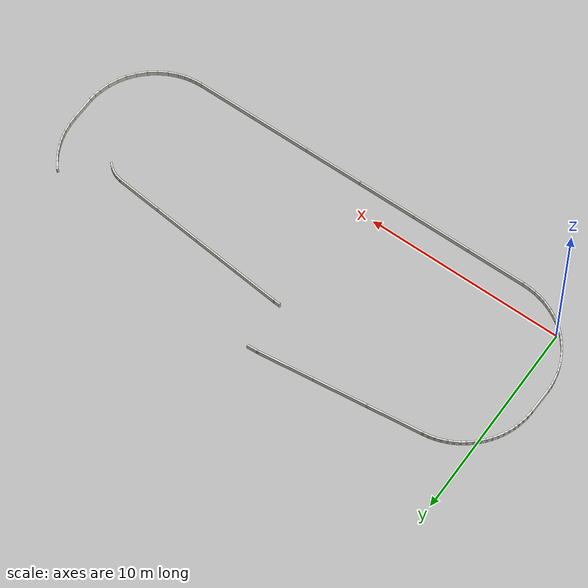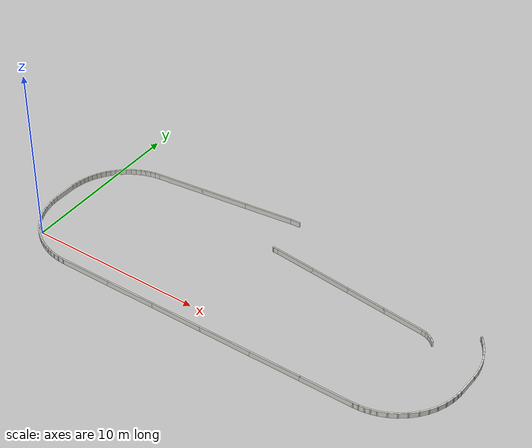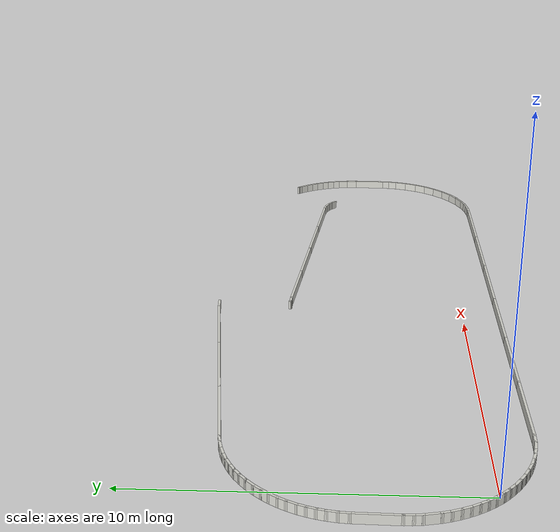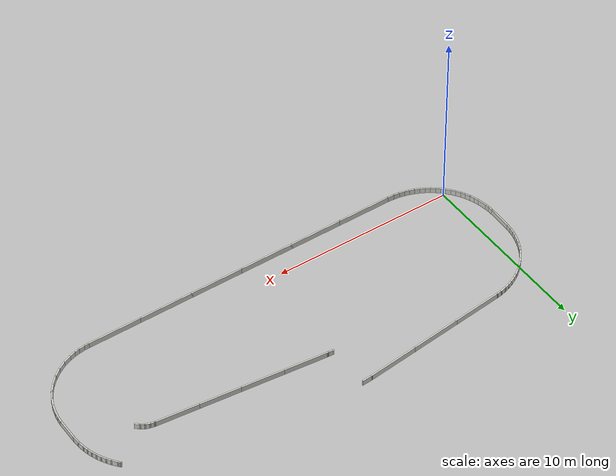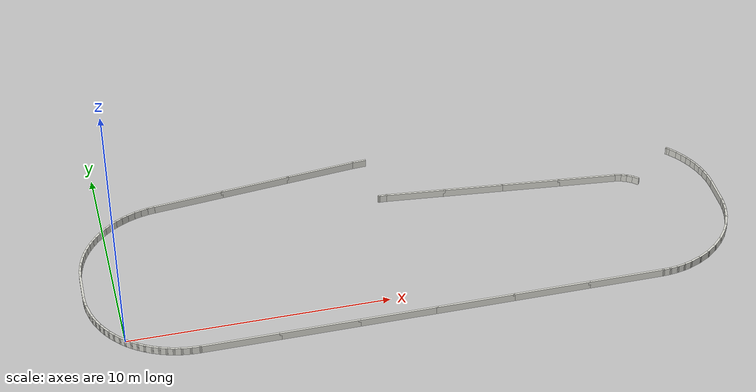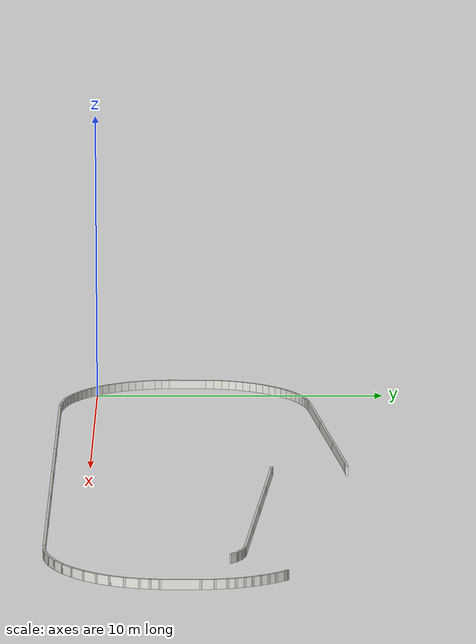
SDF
<sdf version="1.9">
 <world name="default">
  <model name="track_wall">
   <static>true</static>
   <link name="wall_link">
    <collision name="left0_0_0_collision">
     <pose>21.312929 4.647950 0.150000 0.000000 0.000000 2.402137</pose>
     <geometry><box><size>0.319361 0.080000 0.300000</size></box></geometry>
    </collision>
    <visual name="left0_0_0_visual">
     <pose>21.312929 4.647950 0.150000 0.000000 0.000000 2.402137</pose>
     <geometry><box><size>0.319361 0.080000 0.300000</size></box></geometry>
     <material><ambient>0.85 0.85 0.82 1</ambient><diffuse>0.85 0.85 0.82 1</diffuse></material>
    </visual>
    <collision name="left0_1_0_collision">
     <pose>21.123311 4.792501 0.150000 0.000000 0.000000 2.578366</pose>
     <geometry><box><size>0.319361 0.080000 0.300000</size></box></geometry>
    </collision>
    <visual name="left0_1_0_visual">
     <pose>21.123311 4.792501 0.150000 0.000000 0.000000 2.578366</pose>
     <geometry><box><size>0.319361 0.080000 0.300000</size></box></geometry>
     <material><ambient>0.85 0.85 0.82 1</ambient><diffuse>0.85 0.85 0.82 1</diffuse></material>
    </visual>
    <collision name="left0_2_0_collision">
     <pose>20.916260 4.900016 0.150000 0.000000 0.000000 2.750763</pose>
     <geometry><box><size>0.308979 0.080000 0.300000</size></box></geometry>
    </collision>
    <visual name="left0_2_0_visual">
     <pose>20.916260 4.900016 0.150000 0.000000 0.000000 2.750763</pose>
     <geometry><box><size>0.308979 0.080000 0.300000</size></box></geometry>
     <material><ambient>0.85 0.85 0.82 1</ambient><diffuse>0.85 0.85 0.82 1</diffuse></material>
    </visual>
    <collision name="left0_3_0_collision">
     <pose>20.693567 4.969566 0.150000 0.000000 0.000000 2.923161</pose>
     <geometry><box><size>0.319361 0.080000 0.300000</size></box></geometry>
    </collision>
    <visual name="left0_3_0_visual">
     <pose>20.693567 4.969566 0.150000 0.000000 0.000000 2.923161</pose>
     <geometry><box><size>0.319361 0.080000 0.300000</size></box></geometry>
     <material><ambient>0.85 0.85 0.82 1</ambient><diffuse>0.85 0.85 0.82 1</diffuse></material>
    </visual>
    <collision name="left0_4_0_collision">
     <pose>19.416419 5.111612 0.150000 0.000000 0.000000 3.041855</pose>
     <geometry><box><size>2.412213 0.080000 0.300000</size></box></geometry>
    </collision>
    <visual name="left0_4_0_visual">
     <pose>19.416419 5.111612 0.150000 0.000000 0.000000 3.041855</pose>
     <geometry><box><size>2.412213 0.080000 0.300000</size></box></geometry>
     <material><ambient>0.85 0.85 0.82 1</ambient><diffuse>0.85 0.85 0.82 1</diffuse></material>
    </visual>
    <collision name="left0_4_1_collision">
     <pose>17.095796 5.343835 0.150000 0.000000 0.000000 3.041855</pose>
     <geometry><box><size>2.412213 0.080000 0.300000</size></box></geometry>
    </collision>
    <visual name="left0_4_1_visual">
     <pose>17.095796 5.343835 0.150000 0.000000 0.000000 3.041855</pose>
     <geometry><box><size>2.412213 0.080000 0.300000</size></box></geometry>
     <material><ambient>0.85 0.85 0.82 1</ambient><diffuse>0.85 0.85 0.82 1</diffuse></material>
    </visual>
    <collision name="left0_4_2_collision">
     <pose>14.775173 5.576058 0.150000 0.000000 0.000000 3.041855</pose>
     <geometry><box><size>2.412213 0.080000 0.300000</size></box></geometry>
    </collision>
    <visual name="left0_4_2_visual">
     <pose>14.775173 5.576058 0.150000 0.000000 0.000000 3.041855</pose>
     <geometry><box><size>2.412213 0.080000 0.300000</size></box></geometry>
     <material><ambient>0.85 0.85 0.82 1</ambient><diffuse>0.85 0.85 0.82 1</diffuse></material>
    </visual>
    <collision name="left0_4_3_collision">
     <pose>12.454550 5.808281 0.150000 0.000000 0.000000 3.041855</pose>
     <geometry><box><size>2.412213 0.080000 0.300000</size></box></geometry>
    </collision>
    <visual name="left0_4_3_visual">
     <pose>12.454550 5.808281 0.150000 0.000000 0.000000 3.041855</pose>
     <geometry><box><size>2.412213 0.080000 0.300000</size></box></geometry>
     <material><ambient>0.85 0.85 0.82 1</ambient><diffuse>0.85 0.85 0.82 1</diffuse></material>
    </visual>
    <collision name="left0_5_0_collision">
     <pose>11.149956 5.931303 0.150000 0.000000 0.000000 3.093734</pose>
     <geometry><box><size>0.368896 0.080000 0.300000</size></box></geometry>
    </collision>
    <visual name="left0_5_0_visual">
     <pose>11.149956 5.931303 0.150000 0.000000 0.000000 3.093734</pose>
     <geometry><box><size>0.368896 0.080000 0.300000</size></box></geometry>
     <material><ambient>0.85 0.85 0.82 1</ambient><diffuse>0.85 0.85 0.82 1</diffuse></material>
    </visual>
    <collision name="left0_6_0_collision">
     <pose>10.998780 5.943259 0.150000 0.000000 0.000000 2.509762</pose>
     <geometry><box><size>0.097084 0.080000 0.300000</size></box></geometry>
    </collision>
    <visual name="left0_6_0_visual">
     <pose>10.998780 5.943259 0.150000 0.000000 0.000000 2.509762</pose>
     <geometry><box><size>0.097084 0.080000 0.300000</size></box></geometry>
     <material><ambient>0.85 0.85 0.82 1</ambient><diffuse>0.85 0.85 0.82 1</diffuse></material>
    </visual>
    <collision name="right1_0_0_collision">
     <pose>10.710147 8.400713 0.150000 0.000000 0.000000 -3.075481</pose>
     <geometry><box><size>0.597904 0.080000 0.300000</size></box></geometry>
    </collision>
    <visual name="right1_0_0_visual">
     <pose>10.710147 8.400713 0.150000 0.000000 0.000000 -3.075481</pose>
     <geometry><box><size>0.597904 0.080000 0.300000</size></box></geometry>
     <material><ambient>0.85 0.85 0.82 1</ambient><diffuse>0.85 0.85 0.82 1</diffuse></material>
    </visual>
    <collision name="right1_1_0_collision">
     <pose>9.074846 8.220286 0.150000 0.000000 0.000000 -3.023531</pose>
     <geometry><box><size>2.853135 0.080000 0.300000</size></box></geometry>
    </collision>
    <visual name="right1_1_0_visual">
     <pose>9.074846 8.220286 0.150000 0.000000 0.000000 -3.023531</pose>
     <geometry><box><size>2.853135 0.080000 0.300000</size></box></geometry>
     <material><ambient>0.85 0.85 0.82 1</ambient><diffuse>0.85 0.85 0.82 1</diffuse></material>
    </visual>
    <collision name="right1_1_1_collision">
     <pose>6.321015 7.893644 0.150000 0.000000 0.000000 -3.023531</pose>
     <geometry><box><size>2.853135 0.080000 0.300000</size></box></geometry>
    </collision>
    <visual name="right1_1_1_visual">
     <pose>6.321015 7.893644 0.150000 0.000000 0.000000 -3.023531</pose>
     <geometry><box><size>2.853135 0.080000 0.300000</size></box></geometry>
     <material><ambient>0.85 0.85 0.82 1</ambient><diffuse>0.85 0.85 0.82 1</diffuse></material>
    </visual>
    <collision name="right1_1_2_collision">
     <pose>3.567185 7.567003 0.150000 0.000000 0.000000 -3.023531</pose>
     <geometry><box><size>2.853135 0.080000 0.300000</size></box></geometry>
    </collision>
    <visual name="right1_1_2_visual">
     <pose>3.567185 7.567003 0.150000 0.000000 0.000000 -3.023531</pose>
     <geometry><box><size>2.853135 0.080000 0.300000</size></box></geometry>
     <material><ambient>0.85 0.85 0.82 1</ambient><diffuse>0.85 0.85 0.82 1</diffuse></material>
    </visual>
    <collision name="right1_2_0_collision">
     <pose>2.049290 7.381830 0.150000 0.000000 0.000000 -2.987811</pose>
     <geometry><box><size>0.365327 0.080000 0.300000</size></box></geometry>
    </collision>
    <visual name="right1_2_0_visual">
     <pose>2.049290 7.381830 0.150000 0.000000 0.000000 -2.987811</pose>
     <geometry><box><size>0.365327 0.080000 0.300000</size></box></geometry>
     <material><ambient>0.85 0.85 0.82 1</ambient><diffuse>0.85 0.85 0.82 1</diffuse></material>
    </visual>
    <collision name="right1_3_0_collision">
     <pose>1.768398 7.327218 0.150000 0.000000 0.000000 -2.911595</pose>
     <geometry><box><size>0.367392 0.080000 0.300000</size></box></geometry>
    </collision>
    <visual name="right1_3_0_visual">
     <pose>1.768398 7.327218 0.150000 0.000000 0.000000 -2.911595</pose>
     <geometry><box><size>0.367392 0.080000 0.300000</size></box></geometry>
     <material><ambient>0.85 0.85 0.82 1</ambient><diffuse>0.85 0.85 0.82 1</diffuse></material>
    </visual>
    <collision name="right1_4_0_collision">
     <pose>1.491557 7.251117 0.150000 0.000000 0.000000 -2.835041</pose>
     <geometry><box><size>0.367249 0.080000 0.300000</size></box></geometry>
    </collision>
    <visual name="right1_4_0_visual">
     <pose>1.491557 7.251117 0.150000 0.000000 0.000000 -2.835041</pose>
     <geometry><box><size>0.367249 0.080000 0.300000</size></box></geometry>
     <material><ambient>0.85 0.85 0.82 1</ambient><diffuse>0.85 0.85 0.82 1</diffuse></material>
    </visual>
    <collision name="right1_5_0_collision">
     <pose>1.221482 7.154114 0.150000 0.000000 0.000000 -2.758486</pose>
     <geometry><box><size>0.367106 0.080000 0.300000</size></box></geometry>
    </collision>
    <visual name="right1_5_0_visual">
     <pose>1.221482 7.154114 0.150000 0.000000 0.000000 -2.758486</pose>
     <geometry><box><size>0.367106 0.080000 0.300000</size></box></geometry>
     <material><ambient>0.85 0.85 0.82 1</ambient><diffuse>0.85 0.85 0.82 1</diffuse></material>
    </visual>
    <collision name="right1_6_0_collision">
     <pose>0.959747 7.036799 0.150000 0.000000 0.000000 -2.681931</pose>
     <geometry><box><size>0.366963 0.080000 0.300000</size></box></geometry>
    </collision>
    <visual name="right1_6_0_visual">
     <pose>0.959747 7.036799 0.150000 0.000000 0.000000 -2.681931</pose>
     <geometry><box><size>0.366963 0.080000 0.300000</size></box></geometry>
     <material><ambient>0.85 0.85 0.82 1</ambient><diffuse>0.85 0.85 0.82 1</diffuse></material>
    </visual>
    <collision name="right1_7_0_collision">
     <pose>0.707877 6.899878 0.150000 0.000000 0.000000 -2.605376</pose>
     <geometry><box><size>0.366819 0.080000 0.300000</size></box></geometry>
    </collision>
    <visual name="right1_7_0_visual">
     <pose>0.707877 6.899878 0.150000 0.000000 0.000000 -2.605376</pose>
     <geometry><box><size>0.366819 0.080000 0.300000</size></box></geometry>
     <material><ambient>0.85 0.85 0.82 1</ambient><diffuse>0.85 0.85 0.82 1</diffuse></material>
    </visual>
    <collision name="right1_8_0_collision">
     <pose>0.467337 6.744173 0.150000 0.000000 0.000000 -2.528821</pose>
     <geometry><box><size>0.366676 0.080000 0.300000</size></box></geometry>
    </collision>
    <visual name="right1_8_0_visual">
     <pose>0.467337 6.744173 0.150000 0.000000 0.000000 -2.528821</pose>
     <geometry><box><size>0.366676 0.080000 0.300000</size></box></geometry>
     <material><ambient>0.85 0.85 0.82 1</ambient><diffuse>0.85 0.85 0.82 1</diffuse></material>
    </visual>
    <collision name="right1_9_0_collision">
     <pose>0.239523 6.570614 0.150000 0.000000 0.000000 -2.452266</pose>
     <geometry><box><size>0.366533 0.080000 0.300000</size></box></geometry>
    </collision>
    <visual name="right1_9_0_visual">
     <pose>0.239523 6.570614 0.150000 0.000000 0.000000 -2.452266</pose>
     <geometry><box><size>0.366533 0.080000 0.300000</size></box></geometry>
     <material><ambient>0.85 0.85 0.82 1</ambient><diffuse>0.85 0.85 0.82 1</diffuse></material>
    </visual>
    <collision name="right1_10_0_collision">
     <pose>0.015863 6.369884 0.150000 0.000000 0.000000 -2.371885</pose>
     <geometry><box><size>0.395004 0.080000 0.300000</size></box></geometry>
    </collision>
    <visual name="right1_10_0_visual">
     <pose>0.015863 6.369884 0.150000 0.000000 0.000000 -2.371885</pose>
     <geometry><box><size>0.395004 0.080000 0.300000</size></box></geometry>
     <material><ambient>0.85 0.85 0.82 1</ambient><diffuse>0.85 0.85 0.82 1</diffuse></material>
    </visual>
    <collision name="right1_11_0_collision">
     <pose>-0.192926 6.153767 0.150000 0.000000 0.000000 -2.302718</pose>
     <geometry><box><size>0.366352 0.080000 0.300000</size></box></geometry>
    </collision>
    <visual name="right1_11_0_visual">
     <pose>-0.192926 6.153767 0.150000 0.000000 0.000000 -2.302718</pose>
     <geometry><box><size>0.366352 0.080000 0.300000</size></box></geometry>
     <material><ambient>0.85 0.85 0.82 1</ambient><diffuse>0.85 0.85 0.82 1</diffuse></material>
    </visual>
    <collision name="right1_12_0_collision">
     <pose>-0.368528 5.946047 0.150000 0.000000 0.000000 -2.239164</pose>
     <geometry><box><size>0.337920 0.080000 0.300000</size></box></geometry>
    </collision>
    <visual name="right1_12_0_visual">
     <pose>-0.368528 5.946047 0.150000 0.000000 0.000000 -2.239164</pose>
     <geometry><box><size>0.337920 0.080000 0.300000</size></box></geometry>
     <material><ambient>0.85 0.85 0.82 1</ambient><diffuse>0.85 0.85 0.82 1</diffuse></material>
    </visual>
    <collision name="right1_13_0_collision">
     <pose>-0.528911 5.726107 0.150000 0.000000 0.000000 -2.166425</pose>
     <geometry><box><size>0.366853 0.080000 0.300000</size></box></geometry>
    </collision>
    <visual name="right1_13_0_visual">
     <pose>-0.528911 5.726107 0.150000 0.000000 0.000000 -2.166425</pose>
     <geometry><box><size>0.366853 0.080000 0.300000</size></box></geometry>
     <material><ambient>0.85 0.85 0.82 1</ambient><diffuse>0.85 0.85 0.82 1</diffuse></material>
    </visual>
    <collision name="right1_14_0_collision">
     <pose>-0.673909 5.495426 0.150000 0.000000 0.000000 -2.093688</pose>
     <geometry><box><size>0.338440 0.080000 0.300000</size></box></geometry>
    </collision>
    <visual name="right1_14_0_visual">
     <pose>-0.673909 5.495426 0.150000 0.000000 0.000000 -2.093688</pose>
     <geometry><box><size>0.338440 0.080000 0.300000</size></box></geometry>
     <material><ambient>0.85 0.85 0.82 1</ambient><diffuse>0.85 0.85 0.82 1</diffuse></material>
    </visual>
    <collision name="right1_15_0_collision">
     <pose>-0.800971 5.254074 0.150000 0.000000 0.000000 -2.020949</pose>
     <geometry><box><size>0.367431 0.080000 0.300000</size></box></geometry>
    </collision>
    <visual name="right1_15_0_visual">
     <pose>-0.800971 5.254074 0.150000 0.000000 0.000000 -2.020949</pose>
     <geometry><box><size>0.367431 0.080000 0.300000</size></box></geometry>
     <material><ambient>0.85 0.85 0.82 1</ambient><diffuse>0.85 0.85 0.82 1</diffuse></material>
    </visual>
    <collision name="right1_16_0_collision">
     <pose>-0.911218 5.004309 0.150000 0.000000 0.000000 -1.948213</pose>
     <geometry><box><size>0.338960 0.080000 0.300000</size></box></geometry>
    </collision>
    <visual name="right1_16_0_visual">
     <pose>-0.911218 5.004309 0.150000 0.000000 0.000000 -1.948213</pose>
     <geometry><box><size>0.338960 0.080000 0.300000</size></box></geometry>
     <material><ambient>0.85 0.85 0.82 1</ambient><diffuse>0.85 0.85 0.82 1</diffuse></material>
    </visual>
    <collision name="right1_17_0_collision">
     <pose>-0.998286 4.760458 0.150000 0.000000 0.000000 -1.879303</pose>
     <geometry><box><size>0.339206 0.080000 0.300000</size></box></geometry>
    </collision>
    <visual name="right1_17_0_visual">
     <pose>-0.998286 4.760458 0.150000 0.000000 0.000000 -1.879303</pose>
     <geometry><box><size>0.339206 0.080000 0.300000</size></box></geometry>
     <material><ambient>0.85 0.85 0.82 1</ambient><diffuse>0.85 0.85 0.82 1</diffuse></material>
    </visual>
    <collision name="right1_18_0_collision">
     <pose>-1.068423 4.510953 0.150000 0.000000 0.000000 -1.810394</pose>
     <geometry><box><size>0.339452 0.080000 0.300000</size></box></geometry>
    </collision>
    <visual name="right1_18_0_visual">
     <pose>-1.068423 4.510953 0.150000 0.000000 0.000000 -1.810394</pose>
     <geometry><box><size>0.339452 0.080000 0.300000</size></box></geometry>
     <material><ambient>0.85 0.85 0.82 1</ambient><diffuse>0.85 0.85 0.82 1</diffuse></material>
    </visual>
    <collision name="right1_19_0_collision">
     <pose>-1.123171 4.242659 0.150000 0.000000 0.000000 -1.737655</pose>
     <geometry><box><size>0.368555 0.080000 0.300000</size></box></geometry>
    </collision>
    <visual name="right1_19_0_visual">
     <pose>-1.123171 4.242659 0.150000 0.000000 0.000000 -1.737655</pose>
     <geometry><box><size>0.368555 0.080000 0.300000</size></box></geometry>
     <material><ambient>0.85 0.85 0.82 1</ambient><diffuse>0.85 0.85 0.82 1</diffuse></material>
    </visual>
    <collision name="right1_20_0_collision">
     <pose>-1.160157 3.956544 0.150000 0.000000 0.000000 -1.661089</pose>
     <geometry><box><size>0.368859 0.080000 0.300000</size></box></geometry>
    </collision>
    <visual name="right1_20_0_visual">
     <pose>-1.160157 3.956544 0.150000 0.000000 0.000000 -1.661089</pose>
     <geometry><box><size>0.368859 0.080000 0.300000</size></box></geometry>
     <material><ambient>0.85 0.85 0.82 1</ambient><diffuse>0.85 0.85 0.82 1</diffuse></material>
    </visual>
    <collision name="right1_21_0_collision">
     <pose>-1.186308 3.162674 0.150000 0.000000 0.000000 -1.590991</pose>
     <geometry><box><size>1.380322 0.080000 0.300000</size></box></geometry>
    </collision>
    <visual name="right1_21_0_visual">
     <pose>-1.186308 3.162674 0.150000 0.000000 0.000000 -1.590991</pose>
     <geometry><box><size>1.380322 0.080000 0.300000</size></box></geometry>
     <material><ambient>0.85 0.85 0.82 1</ambient><diffuse>0.85 0.85 0.82 1</diffuse></material>
    </visual>
    <collision name="right1_22_0_collision">
     <pose>-1.193694 2.381681 0.150000 0.000000 0.000000 -1.526968</pose>
     <geometry><box><size>0.342181 0.080000 0.300000</size></box></geometry>
    </collision>
    <visual name="right1_22_0_visual">
     <pose>-1.193694 2.381681 0.150000 0.000000 0.000000 -1.526968</pose>
     <geometry><box><size>0.342181 0.080000 0.300000</size></box></geometry>
     <material><ambient>0.85 0.85 0.82 1</ambient><diffuse>0.85 0.85 0.82 1</diffuse></material>
    </visual>
    <collision name="right1_23_0_collision">
     <pose>-1.175266 2.134775 0.150000 0.000000 0.000000 -1.461826</pose>
     <geometry><box><size>0.313267 0.080000 0.300000</size></box></geometry>
    </collision>
    <visual name="right1_23_0_visual">
     <pose>-1.175266 2.134775 0.150000 0.000000 0.000000 -1.461826</pose>
     <geometry><box><size>0.313267 0.080000 0.300000</size></box></geometry>
     <material><ambient>0.85 0.85 0.82 1</ambient><diffuse>0.85 0.85 0.82 1</diffuse></material>
    </visual>
    <collision name="right1_24_0_collision">
     <pose>-1.115985 1.790082 0.150000 0.000000 0.000000 -1.369848</pose>
     <geometry><box><size>0.546899 0.080000 0.300000</size></box></geometry>
    </collision>
    <visual name="right1_24_0_visual">
     <pose>-1.115985 1.790082 0.150000 0.000000 0.000000 -1.369848</pose>
     <geometry><box><size>0.546899 0.080000 0.300000</size></box></geometry>
     <material><ambient>0.85 0.85 0.82 1</ambient><diffuse>0.85 0.85 0.82 1</diffuse></material>
    </visual>
    <collision name="right1_25_0_collision">
     <pose>-1.030926 1.435536 0.150000 0.000000 0.000000 -1.274061</pose>
     <geometry><box><size>0.343086 0.080000 0.300000</size></box></geometry>
    </collision>
    <visual name="right1_25_0_visual">
     <pose>-1.030926 1.435536 0.150000 0.000000 0.000000 -1.274061</pose>
     <geometry><box><size>0.343086 0.080000 0.300000</size></box></geometry>
     <material><ambient>0.85 0.85 0.82 1</ambient><diffuse>0.85 0.85 0.82 1</diffuse></material>
    </visual>
    <collision name="right1_26_0_collision">
     <pose>-0.945377 1.186783 0.150000 0.000000 0.000000 -1.205087</pose>
     <geometry><box><size>0.343332 0.080000 0.300000</size></box></geometry>
    </collision>
    <visual name="right1_26_0_visual">
     <pose>-0.945377 1.186783 0.150000 0.000000 0.000000 -1.205087</pose>
     <geometry><box><size>0.343332 0.080000 0.300000</size></box></geometry>
     <material><ambient>0.85 0.85 0.82 1</ambient><diffuse>0.85 0.85 0.82 1</diffuse></material>
    </visual>
    <collision name="right1_27_0_collision">
     <pose>-0.842792 0.944291 0.150000 0.000000 0.000000 -1.136112</pose>
     <geometry><box><size>0.343579 0.080000 0.300000</size></box></geometry>
    </collision>
    <visual name="right1_27_0_visual">
     <pose>-0.842792 0.944291 0.150000 0.000000 0.000000 -1.136112</pose>
     <geometry><box><size>0.343579 0.080000 0.300000</size></box></geometry>
     <material><ambient>0.85 0.85 0.82 1</ambient><diffuse>0.85 0.85 0.82 1</diffuse></material>
    </visual>
    <collision name="right1_28_0_collision">
     <pose>-0.723627 0.709225 0.150000 0.000000 0.000000 -1.067138</pose>
     <geometry><box><size>0.343826 0.080000 0.300000</size></box></geometry>
    </collision>
    <visual name="right1_28_0_visual">
     <pose>-0.723627 0.709225 0.150000 0.000000 0.000000 -1.067138</pose>
     <geometry><box><size>0.343826 0.080000 0.300000</size></box></geometry>
     <material><ambient>0.85 0.85 0.82 1</ambient><diffuse>0.85 0.85 0.82 1</diffuse></material>
    </visual>
    <collision name="right1_29_0_collision">
     <pose>-0.588418 0.482720 0.150000 0.000000 0.000000 -0.998163</pose>
     <geometry><box><size>0.344072 0.080000 0.300000</size></box></geometry>
    </collision>
    <visual name="right1_29_0_visual">
     <pose>-0.588418 0.482720 0.150000 0.000000 0.000000 -0.998163</pose>
     <geometry><box><size>0.344072 0.080000 0.300000</size></box></geometry>
     <material><ambient>0.85 0.85 0.82 1</ambient><diffuse>0.85 0.85 0.82 1</diffuse></material>
    </visual>
    <collision name="right1_30_0_collision">
     <pose>-0.437779 0.265869 0.150000 0.000000 0.000000 -0.929189</pose>
     <geometry><box><size>0.344319 0.080000 0.300000</size></box></geometry>
    </collision>
    <visual name="right1_30_0_visual">
     <pose>-0.437779 0.265869 0.150000 0.000000 0.000000 -0.929189</pose>
     <geometry><box><size>0.344319 0.080000 0.300000</size></box></geometry>
     <material><ambient>0.85 0.85 0.82 1</ambient><diffuse>0.85 0.85 0.82 1</diffuse></material>
    </visual>
    <collision name="right1_31_0_collision">
     <pose>-0.262385 0.048950 0.150000 0.000000 0.000000 -0.856381</pose>
     <geometry><box><size>0.373963 0.080000 0.300000</size></box></geometry>
    </collision>
    <visual name="right1_31_0_visual">
     <pose>-0.262385 0.048950 0.150000 0.000000 0.000000 -0.856381</pose>
     <geometry><box><size>0.373963 0.080000 0.300000</size></box></geometry>
     <material><ambient>0.85 0.85 0.82 1</ambient><diffuse>0.85 0.85 0.82 1</diffuse></material>
    </visual>
    <collision name="right1_32_0_collision">
     <pose>-0.082115 -0.144500 0.150000 0.000000 0.000000 -0.776003</pose>
     <geometry><box><size>0.315307 0.080000 0.300000</size></box></geometry>
    </collision>
    <visual name="right1_32_0_visual">
     <pose>-0.082115 -0.144500 0.150000 0.000000 0.000000 -0.776003</pose>
     <geometry><box><size>0.315307 0.080000 0.300000</size></box></geometry>
     <material><ambient>0.85 0.85 0.82 1</ambient><diffuse>0.85 0.85 0.82 1</diffuse></material>
    </visual>
    <collision name="right1_33_0_collision">
     <pose>0.102598 -0.312744 0.150000 0.000000 0.000000 -0.705681</pose>
     <geometry><box><size>0.344699 0.080000 0.300000</size></box></geometry>
    </collision>
    <visual name="right1_33_0_visual">
     <pose>0.102598 -0.312744 0.150000 0.000000 0.000000 -0.705681</pose>
     <geometry><box><size>0.344699 0.080000 0.300000</size></box></geometry>
     <material><ambient>0.85 0.85 0.82 1</ambient><diffuse>0.85 0.85 0.82 1</diffuse></material>
    </visual>
    <collision name="right1_34_0_collision">
     <pose>0.309732 -0.477252 0.150000 0.000000 0.000000 -0.636718</pose>
     <geometry><box><size>0.344643 0.080000 0.300000</size></box></geometry>
    </collision>
    <visual name="right1_34_0_visual">
     <pose>0.309732 -0.477252 0.150000 0.000000 0.000000 -0.636718</pose>
     <geometry><box><size>0.344643 0.080000 0.300000</size></box></geometry>
     <material><ambient>0.85 0.85 0.82 1</ambient><diffuse>0.85 0.85 0.82 1</diffuse></material>
    </visual>
    <collision name="right1_35_0_collision">
     <pose>0.527662 -0.627065 0.150000 0.000000 0.000000 -0.567756</pose>
     <geometry><box><size>0.344586 0.080000 0.300000</size></box></geometry>
    </collision>
    <visual name="right1_35_0_visual">
     <pose>0.527662 -0.627065 0.150000 0.000000 0.000000 -0.567756</pose>
     <geometry><box><size>0.344586 0.080000 0.300000</size></box></geometry>
     <material><ambient>0.85 0.85 0.82 1</ambient><diffuse>0.85 0.85 0.82 1</diffuse></material>
    </visual>
    <collision name="right1_36_0_collision">
     <pose>0.768516 -0.768006 0.150000 0.000000 0.000000 -0.494962</pose>
     <geometry><box><size>0.373905 0.080000 0.300000</size></box></geometry>
    </collision>
    <visual name="right1_36_0_visual">
     <pose>0.768516 -0.768006 0.150000 0.000000 0.000000 -0.494962</pose>
     <geometry><box><size>0.373905 0.080000 0.300000</size></box></geometry>
     <material><ambient>0.85 0.85 0.82 1</ambient><diffuse>0.85 0.85 0.82 1</diffuse></material>
    </visual>
    <collision name="right1_37_0_collision">
     <pose>1.018456 -0.891990 0.150000 0.000000 0.000000 -0.422168</pose>
     <geometry><box><size>0.344467 0.080000 0.300000</size></box></geometry>
    </collision>
    <visual name="right1_37_0_visual">
     <pose>1.018456 -0.891990 0.150000 0.000000 0.000000 -0.422168</pose>
     <geometry><box><size>0.344467 0.080000 0.300000</size></box></geometry>
     <material><ambient>0.85 0.85 0.82 1</ambient><diffuse>0.85 0.85 0.82 1</diffuse></material>
    </visual>
    <collision name="right1_38_0_collision">
     <pose>1.263124 -0.991902 0.150000 0.000000 0.000000 -0.353206</pose>
     <geometry><box><size>0.344411 0.080000 0.300000</size></box></geometry>
    </collision>
    <visual name="right1_38_0_visual">
     <pose>1.263124 -0.991902 0.150000 0.000000 0.000000 -0.353206</pose>
     <geometry><box><size>0.344411 0.080000 0.300000</size></box></geometry>
     <material><ambient>0.85 0.85 0.82 1</ambient><diffuse>0.85 0.85 0.82 1</diffuse></material>
    </visual>
    <collision name="right1_39_0_collision">
     <pose>1.514042 -1.074699 0.150000 0.000000 0.000000 -0.284243</pose>
     <geometry><box><size>0.344354 0.080000 0.300000</size></box></geometry>
    </collision>
    <visual name="right1_39_0_visual">
     <pose>1.514042 -1.074699 0.150000 0.000000 0.000000 -0.284243</pose>
     <geometry><box><size>0.344354 0.080000 0.300000</size></box></geometry>
     <material><ambient>0.85 0.85 0.82 1</ambient><diffuse>0.85 0.85 0.82 1</diffuse></material>
    </visual>
    <collision name="right1_40_0_collision">
     <pose>1.784468 -1.142581 0.150000 0.000000 0.000000 -0.211450</pose>
     <geometry><box><size>0.373647 0.080000 0.300000</size></box></geometry>
    </collision>
    <visual name="right1_40_0_visual">
     <pose>1.784468 -1.142581 0.150000 0.000000 0.000000 -0.211450</pose>
     <geometry><box><size>0.373647 0.080000 0.300000</size></box></geometry>
     <material><ambient>0.85 0.85 0.82 1</ambient><diffuse>0.85 0.85 0.82 1</diffuse></material>
    </visual>
    <collision name="right1_41_0_collision">
     <pose>2.088095 -1.194485 0.150000 0.000000 0.000000 -0.130994</pose>
     <geometry><box><size>0.402914 0.080000 0.300000</size></box></geometry>
    </collision>
    <visual name="right1_41_0_visual">
     <pose>2.088095 -1.194485 0.150000 0.000000 0.000000 -0.130994</pose>
     <geometry><box><size>0.402914 0.080000 0.300000</size></box></geometry>
     <material><ambient>0.85 0.85 0.82 1</ambient><diffuse>0.85 0.85 0.82 1</diffuse></material>
    </visual>
    <collision name="right1_42_0_collision">
     <pose>2.422908 -1.223121 0.150000 0.000000 0.000000 -0.043158</pose>
     <geometry><box><size>0.429803 0.080000 0.300000</size></box></geometry>
    </collision>
    <visual name="right1_42_0_visual">
     <pose>2.422908 -1.223121 0.150000 0.000000 0.000000 -0.043158</pose>
     <geometry><box><size>0.429803 0.080000 0.300000</size></box></geometry>
     <material><ambient>0.85 0.85 0.82 1</ambient><diffuse>0.85 0.85 0.82 1</diffuse></material>
    </visual>
    <collision name="right1_43_0_collision">
     <pose>4.083571 -1.223872 0.150000 0.000000 0.000000 0.004573</pose>
     <geometry><box><size>3.051878 0.080000 0.300000</size></box></geometry>
    </collision>
    <visual name="right1_43_0_visual">
     <pose>4.083571 -1.223872 0.150000 0.000000 0.000000 0.004573</pose>
     <geometry><box><size>3.051878 0.080000 0.300000</size></box></geometry>
     <material><ambient>0.85 0.85 0.82 1</ambient><diffuse>0.85 0.85 0.82 1</diffuse></material>
    </visual>
    <collision name="right1_43_1_collision">
     <pose>7.055417 -1.210283 0.150000 0.000000 0.000000 0.004573</pose>
     <geometry><box><size>3.051878 0.080000 0.300000</size></box></geometry>
    </collision>
    <visual name="right1_43_1_visual">
     <pose>7.055417 -1.210283 0.150000 0.000000 0.000000 0.004573</pose>
     <geometry><box><size>3.051878 0.080000 0.300000</size></box></geometry>
     <material><ambient>0.85 0.85 0.82 1</ambient><diffuse>0.85 0.85 0.82 1</diffuse></material>
    </visual>
    <collision name="right1_43_2_collision">
     <pose>10.027264 -1.196693 0.150000 0.000000 0.000000 0.004573</pose>
     <geometry><box><size>3.051878 0.080000 0.300000</size></box></geometry>
    </collision>
    <visual name="right1_43_2_visual">
     <pose>10.027264 -1.196693 0.150000 0.000000 0.000000 0.004573</pose>
     <geometry><box><size>3.051878 0.080000 0.300000</size></box></geometry>
     <material><ambient>0.85 0.85 0.82 1</ambient><diffuse>0.85 0.85 0.82 1</diffuse></material>
    </visual>
    <collision name="right1_43_3_collision">
     <pose>12.999111 -1.183104 0.150000 0.000000 0.000000 0.004573</pose>
     <geometry><box><size>3.051878 0.080000 0.300000</size></box></geometry>
    </collision>
    <visual name="right1_43_3_visual">
     <pose>12.999111 -1.183104 0.150000 0.000000 0.000000 0.004573</pose>
     <geometry><box><size>3.051878 0.080000 0.300000</size></box></geometry>
     <material><ambient>0.85 0.85 0.82 1</ambient><diffuse>0.85 0.85 0.82 1</diffuse></material>
    </visual>
    <collision name="right1_43_4_collision">
     <pose>15.970958 -1.169514 0.150000 0.000000 0.000000 0.004573</pose>
     <geometry><box><size>3.051878 0.080000 0.300000</size></box></geometry>
    </collision>
    <visual name="right1_43_4_visual">
     <pose>15.970958 -1.169514 0.150000 0.000000 0.000000 0.004573</pose>
     <geometry><box><size>3.051878 0.080000 0.300000</size></box></geometry>
     <material><ambient>0.85 0.85 0.82 1</ambient><diffuse>0.85 0.85 0.82 1</diffuse></material>
    </visual>
    <collision name="right1_43_5_collision">
     <pose>18.942805 -1.155925 0.150000 0.000000 0.000000 0.004573</pose>
     <geometry><box><size>3.051878 0.080000 0.300000</size></box></geometry>
    </collision>
    <visual name="right1_43_5_visual">
     <pose>18.942805 -1.155925 0.150000 0.000000 0.000000 0.004573</pose>
     <geometry><box><size>3.051878 0.080000 0.300000</size></box></geometry>
     <material><ambient>0.85 0.85 0.82 1</ambient><diffuse>0.85 0.85 0.82 1</diffuse></material>
    </visual>
    <collision name="right1_44_0_collision">
     <pose>20.572144 -1.142077 0.150000 0.000000 0.000000 0.049142</pose>
     <geometry><box><size>0.367179 0.080000 0.300000</size></box></geometry>
    </collision>
    <visual name="right1_44_0_visual">
     <pose>20.572144 -1.142077 0.150000 0.000000 0.000000 0.049142</pose>
     <geometry><box><size>0.367179 0.080000 0.300000</size></box></geometry>
     <material><ambient>0.85 0.85 0.82 1</ambient><diffuse>0.85 0.85 0.82 1</diffuse></material>
    </visual>
    <collision name="right1_45_0_collision">
     <pose>20.872136 -1.114617 0.150000 0.000000 0.000000 0.129598</pose>
     <geometry><box><size>0.395800 0.080000 0.300000</size></box></geometry>
    </collision>
    <visual name="right1_45_0_visual">
     <pose>20.872136 -1.114617 0.150000 0.000000 0.000000 0.129598</pose>
     <geometry><box><size>0.395800 0.080000 0.300000</size></box></geometry>
     <material><ambient>0.85 0.85 0.82 1</ambient><diffuse>0.85 0.85 0.82 1</diffuse></material>
    </visual>
    <collision name="right1_46_0_collision">
     <pose>21.169073 -1.064285 0.150000 0.000000 0.000000 0.210055</pose>
     <geometry><box><size>0.367032 0.080000 0.300000</size></box></geometry>
    </collision>
    <visual name="right1_46_0_visual">
     <pose>21.169073 -1.064285 0.150000 0.000000 0.000000 0.210055</pose>
     <geometry><box><size>0.367032 0.080000 0.300000</size></box></geometry>
     <material><ambient>0.85 0.85 0.82 1</ambient><diffuse>0.85 0.85 0.82 1</diffuse></material>
    </visual>
    <collision name="right1_47_0_collision">
     <pose>21.460642 -0.989154 0.150000 0.000000 0.000000 0.290511</pose>
     <geometry><box><size>0.395639 0.080000 0.300000</size></box></geometry>
    </collision>
    <visual name="right1_47_0_visual">
     <pose>21.460642 -0.989154 0.150000 0.000000 0.000000 0.290511</pose>
     <geometry><box><size>0.395639 0.080000 0.300000</size></box></geometry>
     <material><ambient>0.85 0.85 0.82 1</ambient><diffuse>0.85 0.85 0.82 1</diffuse></material>
    </visual>
    <collision name="right1_48_0_collision">
     <pose>21.836538 -0.849537 0.150000 0.000000 0.000000 0.397783</pose>
     <geometry><box><size>0.567439 0.080000 0.300000</size></box></geometry>
    </collision>
    <visual name="right1_48_0_visual">
     <pose>21.836538 -0.849537 0.150000 0.000000 0.000000 0.397783</pose>
     <geometry><box><size>0.567439 0.080000 0.300000</size></box></geometry>
     <material><ambient>0.85 0.85 0.82 1</ambient><diffuse>0.85 0.85 0.82 1</diffuse></material>
    </visual>
    <collision name="right1_49_0_collision">
     <pose>22.271665 -0.632380 0.150000 0.000000 0.000000 0.528045</pose>
     <geometry><box><size>0.567238 0.080000 0.300000</size></box></geometry>
    </collision>
    <visual name="right1_49_0_visual">
     <pose>22.271665 -0.632380 0.150000 0.000000 0.000000 0.528045</pose>
     <geometry><box><size>0.567238 0.080000 0.300000</size></box></geometry>
     <material><ambient>0.85 0.85 0.82 1</ambient><diffuse>0.85 0.85 0.82 1</diffuse></material>
    </visual>
    <collision name="right1_50_0_collision">
     <pose>22.674732 -0.360654 0.150000 0.000000 0.000000 0.658308</pose>
     <geometry><box><size>0.567036 0.080000 0.300000</size></box></geometry>
    </collision>
    <visual name="right1_50_0_visual">
     <pose>22.674732 -0.360654 0.150000 0.000000 0.000000 0.658308</pose>
     <geometry><box><size>0.567036 0.080000 0.300000</size></box></geometry>
     <material><ambient>0.85 0.85 0.82 1</ambient><diffuse>0.85 0.85 0.82 1</diffuse></material>
    </visual>
    <collision name="right1_51_0_collision">
     <pose>23.050069 -0.029694 0.150000 0.000000 0.000000 0.783407</pose>
     <geometry><box><size>0.595748 0.080000 0.300000</size></box></geometry>
    </collision>
    <visual name="right1_51_0_visual">
     <pose>23.050069 -0.029694 0.150000 0.000000 0.000000 0.783407</pose>
     <geometry><box><size>0.595748 0.080000 0.300000</size></box></geometry>
     <material><ambient>0.85 0.85 0.82 1</ambient><diffuse>0.85 0.85 0.82 1</diffuse></material>
    </visual>
    <collision name="right1_52_0_collision">
     <pose>23.382575 0.344772 0.150000 0.000000 0.000000 0.909469</pose>
     <geometry><box><size>0.567812 0.080000 0.300000</size></box></geometry>
    </collision>
    <visual name="right1_52_0_visual">
     <pose>23.382575 0.344772 0.150000 0.000000 0.000000 0.909469</pose>
     <geometry><box><size>0.567812 0.080000 0.300000</size></box></geometry>
     <material><ambient>0.85 0.85 0.82 1</ambient><diffuse>0.85 0.85 0.82 1</diffuse></material>
    </visual>
    <collision name="right1_53_0_collision">
     <pose>23.649602 0.735117 0.150000 0.000000 0.000000 1.035921</pose>
     <geometry><box><size>0.539960 0.080000 0.300000</size></box></geometry>
    </collision>
    <visual name="right1_53_0_visual">
     <pose>23.649602 0.735117 0.150000 0.000000 0.000000 1.035921</pose>
     <geometry><box><size>0.539960 0.080000 0.300000</size></box></geometry>
     <material><ambient>0.85 0.85 0.82 1</ambient><diffuse>0.85 0.85 0.82 1</diffuse></material>
    </visual>
    <collision name="right1_54_0_collision">
     <pose>23.864039 1.157606 0.150000 0.000000 0.000000 1.162378</pose>
     <geometry><box><size>0.569523 0.080000 0.300000</size></box></geometry>
    </collision>
    <visual name="right1_54_0_visual">
     <pose>23.864039 1.157606 0.150000 0.000000 0.000000 1.162378</pose>
     <geometry><box><size>0.569523 0.080000 0.300000</size></box></geometry>
     <material><ambient>0.85 0.85 0.82 1</ambient><diffuse>0.85 0.85 0.82 1</diffuse></material>
    </visual>
    <collision name="right1_55_0_collision">
     <pose>24.025463 1.603908 0.150000 0.000000 0.000000 1.288830</pose>
     <geometry><box><size>0.541570 0.080000 0.300000</size></box></geometry>
    </collision>
    <visual name="right1_55_0_visual">
     <pose>24.025463 1.603908 0.150000 0.000000 0.000000 1.288830</pose>
     <geometry><box><size>0.541570 0.080000 0.300000</size></box></geometry>
     <material><ambient>0.85 0.85 0.82 1</ambient><diffuse>0.85 0.85 0.82 1</diffuse></material>
    </visual>
    <collision name="right1_56_0_collision">
     <pose>24.117901 1.981997 0.150000 0.000000 0.000000 1.392283</pose>
     <geometry><box><size>0.397887 0.080000 0.300000</size></box></geometry>
    </collision>
    <visual name="right1_56_0_visual">
     <pose>24.117901 1.981997 0.150000 0.000000 0.000000 1.392283</pose>
     <geometry><box><size>0.397887 0.080000 0.300000</size></box></geometry>
     <material><ambient>0.85 0.85 0.82 1</ambient><diffuse>0.85 0.85 0.82 1</diffuse></material>
    </visual>
    <collision name="right1_57_0_collision">
     <pose>24.160285 2.282382 0.150000 0.000000 0.000000 1.472752</pose>
     <geometry><box><size>0.369324 0.080000 0.300000</size></box></geometry>
    </collision>
    <visual name="right1_57_0_visual">
     <pose>24.160285 2.282382 0.150000 0.000000 0.000000 1.472752</pose>
     <geometry><box><size>0.369324 0.080000 0.300000</size></box></geometry>
     <material><ambient>0.85 0.85 0.82 1</ambient><diffuse>0.85 0.85 0.82 1</diffuse></material>
    </visual>
    <collision name="right1_58_0_collision">
     <pose>24.188103 3.037847 0.150000 0.000000 0.000000 1.548466</pose>
     <geometry><box><size>1.303300 0.080000 0.300000</size></box></geometry>
    </collision>
    <visual name="right1_58_0_visual">
     <pose>24.188103 3.037847 0.150000 0.000000 0.000000 1.548466</pose>
     <geometry><box><size>1.303300 0.080000 0.300000</size></box></geometry>
     <material><ambient>0.85 0.85 0.82 1</ambient><diffuse>0.85 0.85 0.82 1</diffuse></material>
    </visual>
    <collision name="right1_59_0_collision">
     <pose>24.193607 3.852003 0.150000 0.000000 0.000000 1.611004</pose>
     <geometry><box><size>0.485646 0.080000 0.300000</size></box></geometry>
    </collision>
    <visual name="right1_59_0_visual">
     <pose>24.193607 3.852003 0.150000 0.000000 0.000000 1.611004</pose>
     <geometry><box><size>0.485646 0.080000 0.300000</size></box></geometry>
     <material><ambient>0.85 0.85 0.82 1</ambient><diffuse>0.85 0.85 0.82 1</diffuse></material>
    </visual>
    <collision name="right1_60_0_collision">
     <pose>24.158338 4.242402 0.150000 0.000000 0.000000 1.714238</pose>
     <geometry><box><size>0.459376 0.080000 0.300000</size></box></geometry>
    </collision>
    <visual name="right1_60_0_visual">
     <pose>24.158338 4.242402 0.150000 0.000000 0.000000 1.714238</pose>
     <geometry><box><size>0.459376 0.080000 0.300000</size></box></geometry>
     <material><ambient>0.85 0.85 0.82 1</ambient><diffuse>0.85 0.85 0.82 1</diffuse></material>
    </visual>
    <collision name="right1_61_0_collision">
     <pose>24.101533 4.558248 0.150000 0.000000 0.000000 1.798531</pose>
     <geometry><box><size>0.343004 0.080000 0.300000</size></box></geometry>
    </collision>
    <visual name="right1_61_0_visual">
     <pose>24.101533 4.558248 0.150000 0.000000 0.000000 1.798531</pose>
     <geometry><box><size>0.343004 0.080000 0.300000</size></box></geometry>
     <material><ambient>0.85 0.85 0.82 1</ambient><diffuse>0.85 0.85 0.82 1</diffuse></material>
    </visual>
    <collision name="right1_62_0_collision">
     <pose>24.033360 4.812229 0.150000 0.000000 0.000000 1.867503</pose>
     <geometry><box><size>0.343251 0.080000 0.300000</size></box></geometry>
    </collision>
    <visual name="right1_62_0_visual">
     <pose>24.033360 4.812229 0.150000 0.000000 0.000000 1.867503</pose>
     <geometry><box><size>0.343251 0.080000 0.300000</size></box></geometry>
     <material><ambient>0.85 0.85 0.82 1</ambient><diffuse>0.85 0.85 0.82 1</diffuse></material>
    </visual>
    <collision name="right1_63_0_collision">
     <pose>23.947766 5.061140 0.150000 0.000000 0.000000 1.936475</pose>
     <geometry><box><size>0.343498 0.080000 0.300000</size></box></geometry>
    </collision>
    <visual name="right1_63_0_visual">
     <pose>23.947766 5.061140 0.150000 0.000000 0.000000 1.936475</pose>
     <geometry><box><size>0.343498 0.080000 0.300000</size></box></geometry>
     <material><ambient>0.85 0.85 0.82 1</ambient><diffuse>0.85 0.85 0.82 1</diffuse></material>
    </visual>
    <collision name="right1_64_0_collision">
     <pose>23.845124 5.303789 0.150000 0.000000 0.000000 2.005446</pose>
     <geometry><box><size>0.343745 0.080000 0.300000</size></box></geometry>
    </collision>
    <visual name="right1_64_0_visual">
     <pose>23.845124 5.303789 0.150000 0.000000 0.000000 2.005446</pose>
     <geometry><box><size>0.343745 0.080000 0.300000</size></box></geometry>
     <material><ambient>0.85 0.85 0.82 1</ambient><diffuse>0.85 0.85 0.82 1</diffuse></material>
    </visual>
    <collision name="right1_65_0_collision">
     <pose>23.725892 5.539007 0.150000 0.000000 0.000000 2.074418</pose>
     <geometry><box><size>0.343992 0.080000 0.300000</size></box></geometry>
    </collision>
    <visual name="right1_65_0_visual">
     <pose>23.725892 5.539007 0.150000 0.000000 0.000000 2.074418</pose>
     <geometry><box><size>0.343992 0.080000 0.300000</size></box></geometry>
     <material><ambient>0.85 0.85 0.82 1</ambient><diffuse>0.85 0.85 0.82 1</diffuse></material>
    </visual>
    <collision name="right1_66_0_collision">
     <pose>23.590606 5.765661 0.150000 0.000000 0.000000 2.143390</pose>
     <geometry><box><size>0.344239 0.080000 0.300000</size></box></geometry>
    </collision>
    <visual name="right1_66_0_visual">
     <pose>23.590606 5.765661 0.150000 0.000000 0.000000 2.143390</pose>
     <geometry><box><size>0.344239 0.080000 0.300000</size></box></geometry>
     <material><ambient>0.85 0.85 0.82 1</ambient><diffuse>0.85 0.85 0.82 1</diffuse></material>
    </visual>
    <collision name="right1_67_0_collision">
     <pose>23.421304 6.005455 0.150000 0.000000 0.000000 2.220028</pose>
     <geometry><box><size>0.403263 0.080000 0.300000</size></box></geometry>
    </collision>
    <visual name="right1_67_0_visual">
     <pose>23.421304 6.005455 0.150000 0.000000 0.000000 2.220028</pose>
     <geometry><box><size>0.403263 0.080000 0.300000</size></box></geometry>
     <material><ambient>0.85 0.85 0.82 1</ambient><diffuse>0.85 0.85 0.82 1</diffuse></material>
    </visual>
    <collision name="right1_68_0_collision">
     <pose>23.285381 6.178947 0.150000 0.000000 0.000000 2.277498</pose>
     <geometry><box><size>0.197672 0.080000 0.300000</size></box></geometry>
    </collision>
    <visual name="right1_68_0_visual">
     <pose>23.285381 6.178947 0.150000 0.000000 0.000000 2.277498</pose>
     <geometry><box><size>0.197672 0.080000 0.300000</size></box></geometry>
     <material><ambient>0.85 0.85 0.82 1</ambient><diffuse>0.85 0.85 0.82 1</diffuse></material>
    </visual>
    <collision name="right1_69_0_collision">
     <pose>23.233583 6.231179 0.150000 0.000000 0.000000 2.638205</pose>
     <geometry><box><size>0.111039 0.080000 0.300000</size></box></geometry>
    </collision>
    <visual name="right1_69_0_visual">
     <pose>23.233583 6.231179 0.150000 0.000000 0.000000 2.638205</pose>
     <geometry><box><size>0.111039 0.080000 0.300000</size></box></geometry>
     <material><ambient>0.85 0.85 0.82 1</ambient><diffuse>0.85 0.85 0.82 1</diffuse></material>
    </visual>
   </link>
  </model>
 </world>
</sdf>
